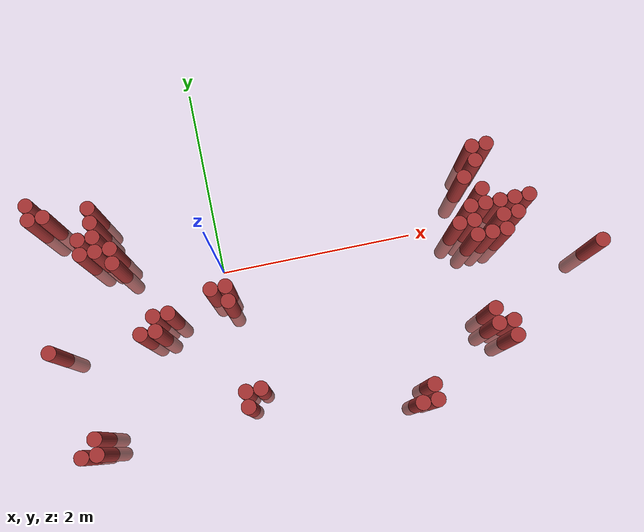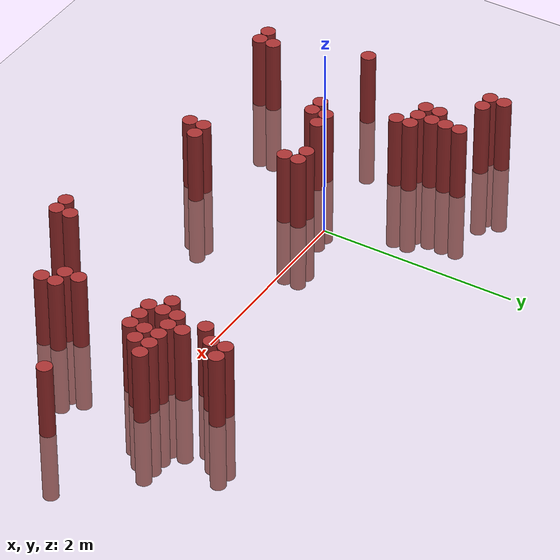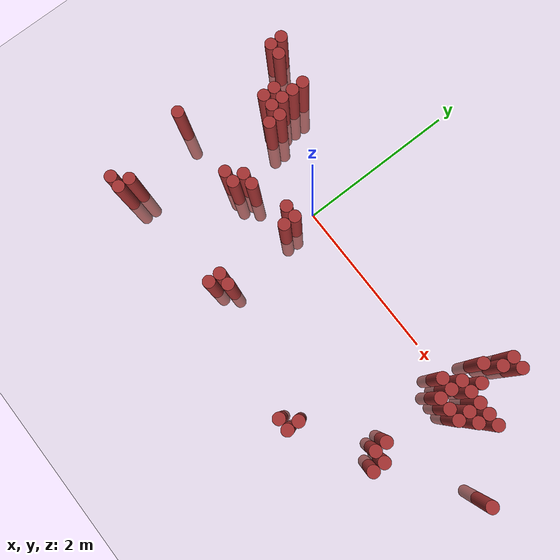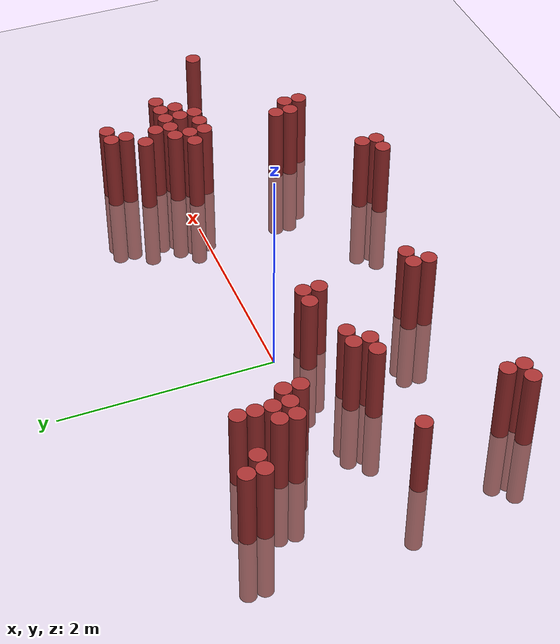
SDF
<sdf version="1.6">
 <world name="default">
  <model name="ground_plane">
   <static>1</static>
   <link name="link">
    <collision name="collision">
     <geometry><plane><normal>0 0 1</normal><size>100 100</size></plane></geometry>
     <surface><friction><ode><mu>100</mu><mu2>50</mu2></ode></friction></surface>
    </collision>
    <visual name="visual">
     <cast_shadows>0</cast_shadows>
     <geometry><plane><normal>0 0 1</normal><size>100 100</size></plane></geometry>
     <material>
      <script><uri>file://media/materials/scripts/gazebo.material</uri><name>Gazebo/Grey</name></script>
     </material>
    </visual>
   </link>
  </model>
  <model name="unit_cylinder_316">
   <static>1</static>
   <pose>-1.775000 -0.575000 0.000000 0.000000 0.000000 0.000000</pose>
   <link name="link">
    <inertial>
     <mass>1</mass>
     <inertia><ixx>0.145833</ixx><ixy>0</ixy><ixz>0</ixz><iyy>0.145833</iyy><iyz>0</iyz><izz>0.125</izz></inertia>
    </inertial>
    <collision name="collision">
     <geometry><cylinder><radius>0.075000</radius><length>1.5</length></cylinder></geometry>
    </collision>
    <visual name="visual">
     <geometry><cylinder><radius>0.075000</radius><length>1.5</length></cylinder></geometry>
     <material>
      <ambient>0.648000 0.192000 0.192000 1</ambient>
      <diffuse>0.648000 0.192000 0.192000 1</diffuse>
     </material>
     <material>
      <script><name>Gazebo/Grey</name><uri>file://media/materials/scripts/gazebo.material</uri></script>
     </material>
    </visual>
   </link>
  </model>
  <model name="unit_cylinder_317">
   <static>1</static>
   <pose>-1.775000 0.775000 0.000000 0.000000 0.000000 0.000000</pose>
   <link name="link">
    <inertial>
     <mass>1</mass>
     <inertia><ixx>0.145833</ixx><ixy>0</ixy><ixz>0</ixz><iyy>0.145833</iyy><iyz>0</iyz><izz>0.125</izz></inertia>
    </inertial>
    <collision name="collision">
     <geometry><cylinder><radius>0.075000</radius><length>1.5</length></cylinder></geometry>
    </collision>
    <visual name="visual">
     <geometry><cylinder><radius>0.075000</radius><length>1.5</length></cylinder></geometry>
     <material>
      <ambient>0.648000 0.192000 0.192000 1</ambient>
      <diffuse>0.648000 0.192000 0.192000 1</diffuse>
     </material>
     <material>
      <script><name>Gazebo/Grey</name><uri>file://media/materials/scripts/gazebo.material</uri></script>
     </material>
    </visual>
   </link>
  </model>
  <model name="unit_cylinder_318">
   <static>1</static>
   <pose>-1.775000 0.925000 0.000000 0.000000 0.000000 0.000000</pose>
   <link name="link">
    <inertial>
     <mass>1</mass>
     <inertia><ixx>0.145833</ixx><ixy>0</ixy><ixz>0</ixz><iyy>0.145833</iyy><iyz>0</iyz><izz>0.125</izz></inertia>
    </inertial>
    <collision name="collision">
     <geometry><cylinder><radius>0.075000</radius><length>1.5</length></cylinder></geometry>
    </collision>
    <visual name="visual">
     <geometry><cylinder><radius>0.075000</radius><length>1.5</length></cylinder></geometry>
     <material>
      <ambient>0.648000 0.192000 0.192000 1</ambient>
      <diffuse>0.648000 0.192000 0.192000 1</diffuse>
     </material>
     <material>
      <script><name>Gazebo/Grey</name><uri>file://media/materials/scripts/gazebo.material</uri></script>
     </material>
    </visual>
   </link>
  </model>
  <model name="unit_cylinder_319">
   <static>1</static>
   <pose>-1.625000 -1.625000 0.000000 0.000000 0.000000 0.000000</pose>
   <link name="link">
    <inertial>
     <mass>1</mass>
     <inertia><ixx>0.145833</ixx><ixy>0</ixy><ixz>0</ixz><iyy>0.145833</iyy><iyz>0</iyz><izz>0.125</izz></inertia>
    </inertial>
    <collision name="collision">
     <geometry><cylinder><radius>0.075000</radius><length>1.5</length></cylinder></geometry>
    </collision>
    <visual name="visual">
     <geometry><cylinder><radius>0.075000</radius><length>1.5</length></cylinder></geometry>
     <material>
      <ambient>0.648000 0.192000 0.192000 1</ambient>
      <diffuse>0.648000 0.192000 0.192000 1</diffuse>
     </material>
     <material>
      <script><name>Gazebo/Grey</name><uri>file://media/materials/scripts/gazebo.material</uri></script>
     </material>
    </visual>
   </link>
  </model>
  <model name="unit_cylinder_320">
   <static>1</static>
   <pose>-1.625000 0.775000 0.000000 0.000000 0.000000 0.000000</pose>
   <link name="link">
    <inertial>
     <mass>1</mass>
     <inertia><ixx>0.145833</ixx><ixy>0</ixy><ixz>0</ixz><iyy>0.145833</iyy><iyz>0</iyz><izz>0.125</izz></inertia>
    </inertial>
    <collision name="collision">
     <geometry><cylinder><radius>0.075000</radius><length>1.5</length></cylinder></geometry>
    </collision>
    <visual name="visual">
     <geometry><cylinder><radius>0.075000</radius><length>1.5</length></cylinder></geometry>
     <material>
      <ambient>0.648000 0.192000 0.192000 1</ambient>
      <diffuse>0.648000 0.192000 0.192000 1</diffuse>
     </material>
     <material>
      <script><name>Gazebo/Grey</name><uri>file://media/materials/scripts/gazebo.material</uri></script>
     </material>
    </visual>
   </link>
  </model>
  <model name="unit_cylinder_323">
   <static>1</static>
   <pose>-1.475000 -1.625000 0.000000 0.000000 0.000000 0.000000</pose>
   <link name="link">
    <inertial>
     <mass>1</mass>
     <inertia><ixx>0.145833</ixx><ixy>0</ixy><ixz>0</ixz><iyy>0.145833</iyy><iyz>0</iyz><izz>0.125</izz></inertia>
    </inertial>
    <collision name="collision">
     <geometry><cylinder><radius>0.075000</radius><length>1.5</length></cylinder></geometry>
    </collision>
    <visual name="visual">
     <geometry><cylinder><radius>0.075000</radius><length>1.5</length></cylinder></geometry>
     <material>
      <ambient>0.648000 0.192000 0.192000 1</ambient>
      <diffuse>0.648000 0.192000 0.192000 1</diffuse>
     </material>
     <material>
      <script><name>Gazebo/Grey</name><uri>file://media/materials/scripts/gazebo.material</uri></script>
     </material>
    </visual>
   </link>
  </model>
  <model name="unit_cylinder_324">
   <static>1</static>
   <pose>-1.475000 -1.475000 0.000000 0.000000 0.000000 0.000000</pose>
   <link name="link">
    <inertial>
     <mass>1</mass>
     <inertia><ixx>0.145833</ixx><ixy>0</ixy><ixz>0</ixz><iyy>0.145833</iyy><iyz>0</iyz><izz>0.125</izz></inertia>
    </inertial>
    <collision name="collision">
     <geometry><cylinder><radius>0.075000</radius><length>1.5</length></cylinder></geometry>
    </collision>
    <visual name="visual">
     <geometry><cylinder><radius>0.075000</radius><length>1.5</length></cylinder></geometry>
     <material>
      <ambient>0.648000 0.192000 0.192000 1</ambient>
      <diffuse>0.648000 0.192000 0.192000 1</diffuse>
     </material>
     <material>
      <script><name>Gazebo/Grey</name><uri>file://media/materials/scripts/gazebo.material</uri></script>
     </material>
    </visual>
   </link>
  </model>
  <model name="unit_cylinder_330">
   <static>1</static>
   <pose>-1.325000 0.325000 0.000000 0.000000 0.000000 0.000000</pose>
   <link name="link">
    <inertial>
     <mass>1</mass>
     <inertia><ixx>0.145833</ixx><ixy>0</ixy><ixz>0</ixz><iyy>0.145833</iyy><iyz>0</iyz><izz>0.125</izz></inertia>
    </inertial>
    <collision name="collision">
     <geometry><cylinder><radius>0.075000</radius><length>1.5</length></cylinder></geometry>
    </collision>
    <visual name="visual">
     <geometry><cylinder><radius>0.075000</radius><length>1.5</length></cylinder></geometry>
     <material>
      <ambient>0.648000 0.192000 0.192000 1</ambient>
      <diffuse>0.648000 0.192000 0.192000 1</diffuse>
     </material>
     <material>
      <script><name>Gazebo/Grey</name><uri>file://media/materials/scripts/gazebo.material</uri></script>
     </material>
    </visual>
   </link>
  </model>
  <model name="unit_cylinder_331">
   <static>1</static>
   <pose>-1.325000 0.475000 0.000000 0.000000 0.000000 0.000000</pose>
   <link name="link">
    <inertial>
     <mass>1</mass>
     <inertia><ixx>0.145833</ixx><ixy>0</ixy><ixz>0</ixz><iyy>0.145833</iyy><iyz>0</iyz><izz>0.125</izz></inertia>
    </inertial>
    <collision name="collision">
     <geometry><cylinder><radius>0.075000</radius><length>1.5</length></cylinder></geometry>
    </collision>
    <visual name="visual">
     <geometry><cylinder><radius>0.075000</radius><length>1.5</length></cylinder></geometry>
     <material>
      <ambient>0.648000 0.192000 0.192000 1</ambient>
      <diffuse>0.648000 0.192000 0.192000 1</diffuse>
     </material>
     <material>
      <script><name>Gazebo/Grey</name><uri>file://media/materials/scripts/gazebo.material</uri></script>
     </material>
    </visual>
   </link>
  </model>
  <model name="unit_cylinder_339">
   <static>1</static>
   <pose>-1.175000 0.325000 0.000000 0.000000 0.000000 0.000000</pose>
   <link name="link">
    <inertial>
     <mass>1</mass>
     <inertia><ixx>0.145833</ixx><ixy>0</ixy><ixz>0</ixz><iyy>0.145833</iyy><iyz>0</iyz><izz>0.125</izz></inertia>
    </inertial>
    <collision name="collision">
     <geometry><cylinder><radius>0.075000</radius><length>1.5</length></cylinder></geometry>
    </collision>
    <visual name="visual">
     <geometry><cylinder><radius>0.075000</radius><length>1.5</length></cylinder></geometry>
     <material>
      <ambient>0.648000 0.192000 0.192000 1</ambient>
      <diffuse>0.648000 0.192000 0.192000 1</diffuse>
     </material>
     <material>
      <script><name>Gazebo/Grey</name><uri>file://media/materials/scripts/gazebo.material</uri></script>
     </material>
    </visual>
   </link>
  </model>
  <model name="unit_cylinder_340">
   <static>1</static>
   <pose>-1.175000 0.475000 0.000000 0.000000 0.000000 0.000000</pose>
   <link name="link">
    <inertial>
     <mass>1</mass>
     <inertia><ixx>0.145833</ixx><ixy>0</ixy><ixz>0</ixz><iyy>0.145833</iyy><iyz>0</iyz><izz>0.125</izz></inertia>
    </inertial>
    <collision name="collision">
     <geometry><cylinder><radius>0.075000</radius><length>1.5</length></cylinder></geometry>
    </collision>
    <visual name="visual">
     <geometry><cylinder><radius>0.075000</radius><length>1.5</length></cylinder></geometry>
     <material>
      <ambient>0.648000 0.192000 0.192000 1</ambient>
      <diffuse>0.648000 0.192000 0.192000 1</diffuse>
     </material>
     <material>
      <script><name>Gazebo/Grey</name><uri>file://media/materials/scripts/gazebo.material</uri></script>
     </material>
    </visual>
   </link>
  </model>
  <model name="unit_cylinder_341">
   <static>1</static>
   <pose>-1.175000 0.625000 0.000000 0.000000 0.000000 0.000000</pose>
   <link name="link">
    <inertial>
     <mass>1</mass>
     <inertia><ixx>0.145833</ixx><ixy>0</ixy><ixz>0</ixz><iyy>0.145833</iyy><iyz>0</iyz><izz>0.125</izz></inertia>
    </inertial>
    <collision name="collision">
     <geometry><cylinder><radius>0.075000</radius><length>1.5</length></cylinder></geometry>
    </collision>
    <visual name="visual">
     <geometry><cylinder><radius>0.075000</radius><length>1.5</length></cylinder></geometry>
     <material>
      <ambient>0.648000 0.192000 0.192000 1</ambient>
      <diffuse>0.648000 0.192000 0.192000 1</diffuse>
     </material>
     <material>
      <script><name>Gazebo/Grey</name><uri>file://media/materials/scripts/gazebo.material</uri></script>
     </material>
    </visual>
   </link>
  </model>
  <model name="unit_cylinder_342">
   <static>1</static>
   <pose>-1.175000 0.775000 0.000000 0.000000 0.000000 0.000000</pose>
   <link name="link">
    <inertial>
     <mass>1</mass>
     <inertia><ixx>0.145833</ixx><ixy>0</ixy><ixz>0</ixz><iyy>0.145833</iyy><iyz>0</iyz><izz>0.125</izz></inertia>
    </inertial>
    <collision name="collision">
     <geometry><cylinder><radius>0.075000</radius><length>1.5</length></cylinder></geometry>
    </collision>
    <visual name="visual">
     <geometry><cylinder><radius>0.075000</radius><length>1.5</length></cylinder></geometry>
     <material>
      <ambient>0.648000 0.192000 0.192000 1</ambient>
      <diffuse>0.648000 0.192000 0.192000 1</diffuse>
     </material>
     <material>
      <script><name>Gazebo/Grey</name><uri>file://media/materials/scripts/gazebo.material</uri></script>
     </material>
    </visual>
   </link>
  </model>
  <model name="unit_cylinder_349">
   <static>1</static>
   <pose>-1.025000 0.175000 0.000000 0.000000 0.000000 0.000000</pose>
   <link name="link">
    <inertial>
     <mass>1</mass>
     <inertia><ixx>0.145833</ixx><ixy>0</ixy><ixz>0</ixz><iyy>0.145833</iyy><iyz>0</iyz><izz>0.125</izz></inertia>
    </inertial>
    <collision name="collision">
     <geometry><cylinder><radius>0.075000</radius><length>1.5</length></cylinder></geometry>
    </collision>
    <visual name="visual">
     <geometry><cylinder><radius>0.075000</radius><length>1.5</length></cylinder></geometry>
     <material>
      <ambient>0.648000 0.192000 0.192000 1</ambient>
      <diffuse>0.648000 0.192000 0.192000 1</diffuse>
     </material>
     <material>
      <script><name>Gazebo/Grey</name><uri>file://media/materials/scripts/gazebo.material</uri></script>
     </material>
    </visual>
   </link>
  </model>
  <model name="unit_cylinder_350">
   <static>1</static>
   <pose>-1.025000 0.325000 0.000000 0.000000 0.000000 0.000000</pose>
   <link name="link">
    <inertial>
     <mass>1</mass>
     <inertia><ixx>0.145833</ixx><ixy>0</ixy><ixz>0</ixz><iyy>0.145833</iyy><iyz>0</iyz><izz>0.125</izz></inertia>
    </inertial>
    <collision name="collision">
     <geometry><cylinder><radius>0.075000</radius><length>1.5</length></cylinder></geometry>
    </collision>
    <visual name="visual">
     <geometry><cylinder><radius>0.075000</radius><length>1.5</length></cylinder></geometry>
     <material>
      <ambient>0.648000 0.192000 0.192000 1</ambient>
      <diffuse>0.648000 0.192000 0.192000 1</diffuse>
     </material>
     <material>
      <script><name>Gazebo/Grey</name><uri>file://media/materials/scripts/gazebo.material</uri></script>
     </material>
    </visual>
   </link>
  </model>
  <model name="unit_cylinder_358">
   <static>1</static>
   <pose>-0.875000 -0.575000 0.000000 0.000000 0.000000 0.000000</pose>
   <link name="link">
    <inertial>
     <mass>1</mass>
     <inertia><ixx>0.145833</ixx><ixy>0</ixy><ixz>0</ixz><iyy>0.145833</iyy><iyz>0</iyz><izz>0.125</izz></inertia>
    </inertial>
    <collision name="collision">
     <geometry><cylinder><radius>0.075000</radius><length>1.5</length></cylinder></geometry>
    </collision>
    <visual name="visual">
     <geometry><cylinder><radius>0.075000</radius><length>1.5</length></cylinder></geometry>
     <material>
      <ambient>0.648000 0.192000 0.192000 1</ambient>
      <diffuse>0.648000 0.192000 0.192000 1</diffuse>
     </material>
     <material>
      <script><name>Gazebo/Grey</name><uri>file://media/materials/scripts/gazebo.material</uri></script>
     </material>
    </visual>
   </link>
  </model>
  <model name="unit_cylinder_362">
   <static>1</static>
   <pose>-0.725000 -0.575000 0.000000 0.000000 0.000000 0.000000</pose>
   <link name="link">
    <inertial>
     <mass>1</mass>
     <inertia><ixx>0.145833</ixx><ixy>0</ixy><ixz>0</ixz><iyy>0.145833</iyy><iyz>0</iyz><izz>0.125</izz></inertia>
    </inertial>
    <collision name="collision">
     <geometry><cylinder><radius>0.075000</radius><length>1.5</length></cylinder></geometry>
    </collision>
    <visual name="visual">
     <geometry><cylinder><radius>0.075000</radius><length>1.5</length></cylinder></geometry>
     <material>
      <ambient>0.648000 0.192000 0.192000 1</ambient>
      <diffuse>0.648000 0.192000 0.192000 1</diffuse>
     </material>
     <material>
      <script><name>Gazebo/Grey</name><uri>file://media/materials/scripts/gazebo.material</uri></script>
     </material>
    </visual>
   </link>
  </model>
  <model name="unit_cylinder_363">
   <static>1</static>
   <pose>-0.725000 -0.425000 0.000000 0.000000 0.000000 0.000000</pose>
   <link name="link">
    <inertial>
     <mass>1</mass>
     <inertia><ixx>0.145833</ixx><ixy>0</ixy><ixz>0</ixz><iyy>0.145833</iyy><iyz>0</iyz><izz>0.125</izz></inertia>
    </inertial>
    <collision name="collision">
     <geometry><cylinder><radius>0.075000</radius><length>1.5</length></cylinder></geometry>
    </collision>
    <visual name="visual">
     <geometry><cylinder><radius>0.075000</radius><length>1.5</length></cylinder></geometry>
     <material>
      <ambient>0.648000 0.192000 0.192000 1</ambient>
      <diffuse>0.648000 0.192000 0.192000 1</diffuse>
     </material>
     <material>
      <script><name>Gazebo/Grey</name><uri>file://media/materials/scripts/gazebo.material</uri></script>
     </material>
    </visual>
   </link>
  </model>
  <model name="unit_cylinder_368">
   <static>1</static>
   <pose>-0.575000 -0.425000 0.000000 0.000000 0.000000 0.000000</pose>
   <link name="link">
    <inertial>
     <mass>1</mass>
     <inertia><ixx>0.145833</ixx><ixy>0</ixy><ixz>0</ixz><iyy>0.145833</iyy><iyz>0</iyz><izz>0.125</izz></inertia>
    </inertial>
    <collision name="collision">
     <geometry><cylinder><radius>0.075000</radius><length>1.5</length></cylinder></geometry>
    </collision>
    <visual name="visual">
     <geometry><cylinder><radius>0.075000</radius><length>1.5</length></cylinder></geometry>
     <material>
      <ambient>0.648000 0.192000 0.192000 1</ambient>
      <diffuse>0.648000 0.192000 0.192000 1</diffuse>
     </material>
     <material>
      <script><name>Gazebo/Grey</name><uri>file://media/materials/scripts/gazebo.material</uri></script>
     </material>
    </visual>
   </link>
  </model>
  <model name="unit_cylinder_382">
   <static>1</static>
   <pose>-0.125000 -0.275000 0.000000 0.000000 0.000000 0.000000</pose>
   <link name="link">
    <inertial>
     <mass>1</mass>
     <inertia><ixx>0.145833</ixx><ixy>0</ixy><ixz>0</ixz><iyy>0.145833</iyy><iyz>0</iyz><izz>0.125</izz></inertia>
    </inertial>
    <collision name="collision">
     <geometry><cylinder><radius>0.075000</radius><length>1.5</length></cylinder></geometry>
    </collision>
    <visual name="visual">
     <geometry><cylinder><radius>0.075000</radius><length>1.5</length></cylinder></geometry>
     <material>
      <ambient>0.648000 0.192000 0.192000 1</ambient>
      <diffuse>0.648000 0.192000 0.192000 1</diffuse>
     </material>
     <material>
      <script><name>Gazebo/Grey</name><uri>file://media/materials/scripts/gazebo.material</uri></script>
     </material>
    </visual>
   </link>
  </model>
  <model name="unit_cylinder_383">
   <static>1</static>
   <pose>0.025000 -1.475000 0.000000 0.000000 0.000000 0.000000</pose>
   <link name="link">
    <inertial>
     <mass>1</mass>
     <inertia><ixx>0.145833</ixx><ixy>0</ixy><ixz>0</ixz><iyy>0.145833</iyy><iyz>0</iyz><izz>0.125</izz></inertia>
    </inertial>
    <collision name="collision">
     <geometry><cylinder><radius>0.075000</radius><length>1.5</length></cylinder></geometry>
    </collision>
    <visual name="visual">
     <geometry><cylinder><radius>0.075000</radius><length>1.5</length></cylinder></geometry>
     <material>
      <ambient>0.648000 0.192000 0.192000 1</ambient>
      <diffuse>0.648000 0.192000 0.192000 1</diffuse>
     </material>
     <material>
      <script><name>Gazebo/Grey</name><uri>file://media/materials/scripts/gazebo.material</uri></script>
     </material>
    </visual>
   </link>
  </model>
  <model name="unit_cylinder_384">
   <static>1</static>
   <pose>0.025000 -1.325000 0.000000 0.000000 0.000000 0.000000</pose>
   <link name="link">
    <inertial>
     <mass>1</mass>
     <inertia><ixx>0.145833</ixx><ixy>0</ixy><ixz>0</ixz><iyy>0.145833</iyy><iyz>0</iyz><izz>0.125</izz></inertia>
    </inertial>
    <collision name="collision">
     <geometry><cylinder><radius>0.075000</radius><length>1.5</length></cylinder></geometry>
    </collision>
    <visual name="visual">
     <geometry><cylinder><radius>0.075000</radius><length>1.5</length></cylinder></geometry>
     <material>
      <ambient>0.648000 0.192000 0.192000 1</ambient>
      <diffuse>0.648000 0.192000 0.192000 1</diffuse>
     </material>
     <material>
      <script><name>Gazebo/Grey</name><uri>file://media/materials/scripts/gazebo.material</uri></script>
     </material>
    </visual>
   </link>
  </model>
  <model name="unit_cylinder_385">
   <static>1</static>
   <pose>0.025000 -0.425000 0.000000 0.000000 0.000000 0.000000</pose>
   <link name="link">
    <inertial>
     <mass>1</mass>
     <inertia><ixx>0.145833</ixx><ixy>0</ixy><ixz>0</ixz><iyy>0.145833</iyy><iyz>0</iyz><izz>0.125</izz></inertia>
    </inertial>
    <collision name="collision">
     <geometry><cylinder><radius>0.075000</radius><length>1.5</length></cylinder></geometry>
    </collision>
    <visual name="visual">
     <geometry><cylinder><radius>0.075000</radius><length>1.5</length></cylinder></geometry>
     <material>
      <ambient>0.648000 0.192000 0.192000 1</ambient>
      <diffuse>0.648000 0.192000 0.192000 1</diffuse>
     </material>
     <material>
      <script><name>Gazebo/Grey</name><uri>file://media/materials/scripts/gazebo.material</uri></script>
     </material>
    </visual>
   </link>
  </model>
  <model name="unit_cylinder_386">
   <static>1</static>
   <pose>0.025000 -0.275000 0.000000 0.000000 0.000000 0.000000</pose>
   <link name="link">
    <inertial>
     <mass>1</mass>
     <inertia><ixx>0.145833</ixx><ixy>0</ixy><ixz>0</ixz><iyy>0.145833</iyy><iyz>0</iyz><izz>0.125</izz></inertia>
    </inertial>
    <collision name="collision">
     <geometry><cylinder><radius>0.075000</radius><length>1.5</length></cylinder></geometry>
    </collision>
    <visual name="visual">
     <geometry><cylinder><radius>0.075000</radius><length>1.5</length></cylinder></geometry>
     <material>
      <ambient>0.648000 0.192000 0.192000 1</ambient>
      <diffuse>0.648000 0.192000 0.192000 1</diffuse>
     </material>
     <material>
      <script><name>Gazebo/Grey</name><uri>file://media/materials/scripts/gazebo.material</uri></script>
     </material>
    </visual>
   </link>
  </model>
  <model name="unit_cylinder_387">
   <static>1</static>
   <pose>0.175000 -1.325000 0.000000 0.000000 0.000000 0.000000</pose>
   <link name="link">
    <inertial>
     <mass>1</mass>
     <inertia><ixx>0.145833</ixx><ixy>0</ixy><ixz>0</ixz><iyy>0.145833</iyy><iyz>0</iyz><izz>0.125</izz></inertia>
    </inertial>
    <collision name="collision">
     <geometry><cylinder><radius>0.075000</radius><length>1.5</length></cylinder></geometry>
    </collision>
    <visual name="visual">
     <geometry><cylinder><radius>0.075000</radius><length>1.5</length></cylinder></geometry>
     <material>
      <ambient>0.648000 0.192000 0.192000 1</ambient>
      <diffuse>0.648000 0.192000 0.192000 1</diffuse>
     </material>
     <material>
      <script><name>Gazebo/Grey</name><uri>file://media/materials/scripts/gazebo.material</uri></script>
     </material>
    </visual>
   </link>
  </model>
  <model name="unit_cylinder_425">
   <static>1</static>
   <pose>1.675000 -1.775000 0.000000 0.000000 0.000000 0.000000</pose>
   <link name="link">
    <inertial>
     <mass>1</mass>
     <inertia><ixx>0.145833</ixx><ixy>0</ixy><ixz>0</ixz><iyy>0.145833</iyy><iyz>0</iyz><izz>0.125</izz></inertia>
    </inertial>
    <collision name="collision">
     <geometry><cylinder><radius>0.075000</radius><length>1.5</length></cylinder></geometry>
    </collision>
    <visual name="visual">
     <geometry><cylinder><radius>0.075000</radius><length>1.5</length></cylinder></geometry>
     <material>
      <ambient>0.648000 0.192000 0.192000 1</ambient>
      <diffuse>0.648000 0.192000 0.192000 1</diffuse>
     </material>
     <material>
      <script><name>Gazebo/Grey</name><uri>file://media/materials/scripts/gazebo.material</uri></script>
     </material>
    </visual>
   </link>
  </model>
  <model name="unit_cylinder_427">
   <static>1</static>
   <pose>1.825000 -1.775000 0.000000 0.000000 0.000000 0.000000</pose>
   <link name="link">
    <inertial>
     <mass>1</mass>
     <inertia><ixx>0.145833</ixx><ixy>0</ixy><ixz>0</ixz><iyy>0.145833</iyy><iyz>0</iyz><izz>0.125</izz></inertia>
    </inertial>
    <collision name="collision">
     <geometry><cylinder><radius>0.075000</radius><length>1.5</length></cylinder></geometry>
    </collision>
    <visual name="visual">
     <geometry><cylinder><radius>0.075000</radius><length>1.5</length></cylinder></geometry>
     <material>
      <ambient>0.648000 0.192000 0.192000 1</ambient>
      <diffuse>0.648000 0.192000 0.192000 1</diffuse>
     </material>
     <material>
      <script><name>Gazebo/Grey</name><uri>file://media/materials/scripts/gazebo.material</uri></script>
     </material>
    </visual>
   </link>
  </model>
  <model name="unit_cylinder_428">
   <static>1</static>
   <pose>1.825000 -1.625000 0.000000 0.000000 0.000000 0.000000</pose>
   <link name="link">
    <inertial>
     <mass>1</mass>
     <inertia><ixx>0.145833</ixx><ixy>0</ixy><ixz>0</ixz><iyy>0.145833</iyy><iyz>0</iyz><izz>0.125</izz></inertia>
    </inertial>
    <collision name="collision">
     <geometry><cylinder><radius>0.075000</radius><length>1.5</length></cylinder></geometry>
    </collision>
    <visual name="visual">
     <geometry><cylinder><radius>0.075000</radius><length>1.5</length></cylinder></geometry>
     <material>
      <ambient>0.648000 0.192000 0.192000 1</ambient>
      <diffuse>0.648000 0.192000 0.192000 1</diffuse>
     </material>
     <material>
      <script><name>Gazebo/Grey</name><uri>file://media/materials/scripts/gazebo.material</uri></script>
     </material>
    </visual>
   </link>
  </model>
  <model name="unit_cylinder_444">
   <static>1</static>
   <pose>2.425000 -0.125000 0.000000 0.000000 0.000000 0.000000</pose>
   <link name="link">
    <inertial>
     <mass>1</mass>
     <inertia><ixx>0.145833</ixx><ixy>0</ixy><ixz>0</ixz><iyy>0.145833</iyy><iyz>0</iyz><izz>0.125</izz></inertia>
    </inertial>
    <collision name="collision">
     <geometry><cylinder><radius>0.075000</radius><length>1.5</length></cylinder></geometry>
    </collision>
    <visual name="visual">
     <geometry><cylinder><radius>0.075000</radius><length>1.5</length></cylinder></geometry>
     <material>
      <ambient>0.648000 0.192000 0.192000 1</ambient>
      <diffuse>0.648000 0.192000 0.192000 1</diffuse>
     </material>
     <material>
      <script><name>Gazebo/Grey</name><uri>file://media/materials/scripts/gazebo.material</uri></script>
     </material>
    </visual>
   </link>
  </model>
  <model name="unit_cylinder_447">
   <static>1</static>
   <pose>2.575000 -1.175000 0.000000 0.000000 0.000000 0.000000</pose>
   <link name="link">
    <inertial>
     <mass>1</mass>
     <inertia><ixx>0.145833</ixx><ixy>0</ixy><ixz>0</ixz><iyy>0.145833</iyy><iyz>0</iyz><izz>0.125</izz></inertia>
    </inertial>
    <collision name="collision">
     <geometry><cylinder><radius>0.075000</radius><length>1.5</length></cylinder></geometry>
    </collision>
    <visual name="visual">
     <geometry><cylinder><radius>0.075000</radius><length>1.5</length></cylinder></geometry>
     <material>
      <ambient>0.648000 0.192000 0.192000 1</ambient>
      <diffuse>0.648000 0.192000 0.192000 1</diffuse>
     </material>
     <material>
      <script><name>Gazebo/Grey</name><uri>file://media/materials/scripts/gazebo.material</uri></script>
     </material>
    </visual>
   </link>
  </model>
  <model name="unit_cylinder_448">
   <static>1</static>
   <pose>2.575000 -1.025000 0.000000 0.000000 0.000000 0.000000</pose>
   <link name="link">
    <inertial>
     <mass>1</mass>
     <inertia><ixx>0.145833</ixx><ixy>0</ixy><ixz>0</ixz><iyy>0.145833</iyy><iyz>0</iyz><izz>0.125</izz></inertia>
    </inertial>
    <collision name="collision">
     <geometry><cylinder><radius>0.075000</radius><length>1.5</length></cylinder></geometry>
    </collision>
    <visual name="visual">
     <geometry><cylinder><radius>0.075000</radius><length>1.5</length></cylinder></geometry>
     <material>
      <ambient>0.648000 0.192000 0.192000 1</ambient>
      <diffuse>0.648000 0.192000 0.192000 1</diffuse>
     </material>
     <material>
      <script><name>Gazebo/Grey</name><uri>file://media/materials/scripts/gazebo.material</uri></script>
     </material>
    </visual>
   </link>
  </model>
  <model name="unit_cylinder_449">
   <static>1</static>
   <pose>2.575000 -0.275000 0.000000 0.000000 0.000000 0.000000</pose>
   <link name="link">
    <inertial>
     <mass>1</mass>
     <inertia><ixx>0.145833</ixx><ixy>0</ixy><ixz>0</ixz><iyy>0.145833</iyy><iyz>0</iyz><izz>0.125</izz></inertia>
    </inertial>
    <collision name="collision">
     <geometry><cylinder><radius>0.075000</radius><length>1.5</length></cylinder></geometry>
    </collision>
    <visual name="visual">
     <geometry><cylinder><radius>0.075000</radius><length>1.5</length></cylinder></geometry>
     <material>
      <ambient>0.648000 0.192000 0.192000 1</ambient>
      <diffuse>0.648000 0.192000 0.192000 1</diffuse>
     </material>
     <material>
      <script><name>Gazebo/Grey</name><uri>file://media/materials/scripts/gazebo.material</uri></script>
     </material>
    </visual>
   </link>
  </model>
  <model name="unit_cylinder_450">
   <static>1</static>
   <pose>2.575000 -0.125000 0.000000 0.000000 0.000000 0.000000</pose>
   <link name="link">
    <inertial>
     <mass>1</mass>
     <inertia><ixx>0.145833</ixx><ixy>0</ixy><ixz>0</ixz><iyy>0.145833</iyy><iyz>0</iyz><izz>0.125</izz></inertia>
    </inertial>
    <collision name="collision">
     <geometry><cylinder><radius>0.075000</radius><length>1.5</length></cylinder></geometry>
    </collision>
    <visual name="visual">
     <geometry><cylinder><radius>0.075000</radius><length>1.5</length></cylinder></geometry>
     <material>
      <ambient>0.648000 0.192000 0.192000 1</ambient>
      <diffuse>0.648000 0.192000 0.192000 1</diffuse>
     </material>
     <material>
      <script><name>Gazebo/Grey</name><uri>file://media/materials/scripts/gazebo.material</uri></script>
     </material>
    </visual>
   </link>
  </model>
  <model name="unit_cylinder_451">
   <static>1</static>
   <pose>2.575000 0.025000 0.000000 0.000000 0.000000 0.000000</pose>
   <link name="link">
    <inertial>
     <mass>1</mass>
     <inertia><ixx>0.145833</ixx><ixy>0</ixy><ixz>0</ixz><iyy>0.145833</iyy><iyz>0</iyz><izz>0.125</izz></inertia>
    </inertial>
    <collision name="collision">
     <geometry><cylinder><radius>0.075000</radius><length>1.5</length></cylinder></geometry>
    </collision>
    <visual name="visual">
     <geometry><cylinder><radius>0.075000</radius><length>1.5</length></cylinder></geometry>
     <material>
      <ambient>0.648000 0.192000 0.192000 1</ambient>
      <diffuse>0.648000 0.192000 0.192000 1</diffuse>
     </material>
     <material>
      <script><name>Gazebo/Grey</name><uri>file://media/materials/scripts/gazebo.material</uri></script>
     </material>
    </visual>
   </link>
  </model>
  <model name="unit_cylinder_452">
   <static>1</static>
   <pose>2.575000 0.325000 0.000000 0.000000 0.000000 0.000000</pose>
   <link name="link">
    <inertial>
     <mass>1</mass>
     <inertia><ixx>0.145833</ixx><ixy>0</ixy><ixz>0</ixz><iyy>0.145833</iyy><iyz>0</iyz><izz>0.125</izz></inertia>
    </inertial>
    <collision name="collision">
     <geometry><cylinder><radius>0.075000</radius><length>1.5</length></cylinder></geometry>
    </collision>
    <visual name="visual">
     <geometry><cylinder><radius>0.075000</radius><length>1.5</length></cylinder></geometry>
     <material>
      <ambient>0.648000 0.192000 0.192000 1</ambient>
      <diffuse>0.648000 0.192000 0.192000 1</diffuse>
     </material>
     <material>
      <script><name>Gazebo/Grey</name><uri>file://media/materials/scripts/gazebo.material</uri></script>
     </material>
    </visual>
   </link>
  </model>
  <model name="unit_cylinder_457">
   <static>1</static>
   <pose>2.725000 -1.325000 0.000000 0.000000 0.000000 0.000000</pose>
   <link name="link">
    <inertial>
     <mass>1</mass>
     <inertia><ixx>0.145833</ixx><ixy>0</ixy><ixz>0</ixz><iyy>0.145833</iyy><iyz>0</iyz><izz>0.125</izz></inertia>
    </inertial>
    <collision name="collision">
     <geometry><cylinder><radius>0.075000</radius><length>1.5</length></cylinder></geometry>
    </collision>
    <visual name="visual">
     <geometry><cylinder><radius>0.075000</radius><length>1.5</length></cylinder></geometry>
     <material>
      <ambient>0.648000 0.192000 0.192000 1</ambient>
      <diffuse>0.648000 0.192000 0.192000 1</diffuse>
     </material>
     <material>
      <script><name>Gazebo/Grey</name><uri>file://media/materials/scripts/gazebo.material</uri></script>
     </material>
    </visual>
   </link>
  </model>
  <model name="unit_cylinder_458">
   <static>1</static>
   <pose>2.725000 -1.175000 0.000000 0.000000 0.000000 0.000000</pose>
   <link name="link">
    <inertial>
     <mass>1</mass>
     <inertia><ixx>0.145833</ixx><ixy>0</ixy><ixz>0</ixz><iyy>0.145833</iyy><iyz>0</iyz><izz>0.125</izz></inertia>
    </inertial>
    <collision name="collision">
     <geometry><cylinder><radius>0.075000</radius><length>1.5</length></cylinder></geometry>
    </collision>
    <visual name="visual">
     <geometry><cylinder><radius>0.075000</radius><length>1.5</length></cylinder></geometry>
     <material>
      <ambient>0.648000 0.192000 0.192000 1</ambient>
      <diffuse>0.648000 0.192000 0.192000 1</diffuse>
     </material>
     <material>
      <script><name>Gazebo/Grey</name><uri>file://media/materials/scripts/gazebo.material</uri></script>
     </material>
    </visual>
   </link>
  </model>
  <model name="unit_cylinder_459">
   <static>1</static>
   <pose>2.725000 -0.275000 0.000000 0.000000 0.000000 0.000000</pose>
   <link name="link">
    <inertial>
     <mass>1</mass>
     <inertia><ixx>0.145833</ixx><ixy>0</ixy><ixz>0</ixz><iyy>0.145833</iyy><iyz>0</iyz><izz>0.125</izz></inertia>
    </inertial>
    <collision name="collision">
     <geometry><cylinder><radius>0.075000</radius><length>1.5</length></cylinder></geometry>
    </collision>
    <visual name="visual">
     <geometry><cylinder><radius>0.075000</radius><length>1.5</length></cylinder></geometry>
     <material>
      <ambient>0.648000 0.192000 0.192000 1</ambient>
      <diffuse>0.648000 0.192000 0.192000 1</diffuse>
     </material>
     <material>
      <script><name>Gazebo/Grey</name><uri>file://media/materials/scripts/gazebo.material</uri></script>
     </material>
    </visual>
   </link>
  </model>
  <model name="unit_cylinder_460">
   <static>1</static>
   <pose>2.725000 0.025000 0.000000 0.000000 0.000000 0.000000</pose>
   <link name="link">
    <inertial>
     <mass>1</mass>
     <inertia><ixx>0.145833</ixx><ixy>0</ixy><ixz>0</ixz><iyy>0.145833</iyy><iyz>0</iyz><izz>0.125</izz></inertia>
    </inertial>
    <collision name="collision">
     <geometry><cylinder><radius>0.075000</radius><length>1.5</length></cylinder></geometry>
    </collision>
    <visual name="visual">
     <geometry><cylinder><radius>0.075000</radius><length>1.5</length></cylinder></geometry>
     <material>
      <ambient>0.648000 0.192000 0.192000 1</ambient>
      <diffuse>0.648000 0.192000 0.192000 1</diffuse>
     </material>
     <material>
      <script><name>Gazebo/Grey</name><uri>file://media/materials/scripts/gazebo.material</uri></script>
     </material>
    </visual>
   </link>
  </model>
  <model name="unit_cylinder_461">
   <static>1</static>
   <pose>2.725000 0.175000 0.000000 0.000000 0.000000 0.000000</pose>
   <link name="link">
    <inertial>
     <mass>1</mass>
     <inertia><ixx>0.145833</ixx><ixy>0</ixy><ixz>0</ixz><iyy>0.145833</iyy><iyz>0</iyz><izz>0.125</izz></inertia>
    </inertial>
    <collision name="collision">
     <geometry><cylinder><radius>0.075000</radius><length>1.5</length></cylinder></geometry>
    </collision>
    <visual name="visual">
     <geometry><cylinder><radius>0.075000</radius><length>1.5</length></cylinder></geometry>
     <material>
      <ambient>0.648000 0.192000 0.192000 1</ambient>
      <diffuse>0.648000 0.192000 0.192000 1</diffuse>
     </material>
     <material>
      <script><name>Gazebo/Grey</name><uri>file://media/materials/scripts/gazebo.material</uri></script>
     </material>
    </visual>
   </link>
  </model>
  <model name="unit_cylinder_462">
   <static>1</static>
   <pose>2.725000 0.475000 0.000000 0.000000 0.000000 0.000000</pose>
   <link name="link">
    <inertial>
     <mass>1</mass>
     <inertia><ixx>0.145833</ixx><ixy>0</ixy><ixz>0</ixz><iyy>0.145833</iyy><iyz>0</iyz><izz>0.125</izz></inertia>
    </inertial>
    <collision name="collision">
     <geometry><cylinder><radius>0.075000</radius><length>1.5</length></cylinder></geometry>
    </collision>
    <visual name="visual">
     <geometry><cylinder><radius>0.075000</radius><length>1.5</length></cylinder></geometry>
     <material>
      <ambient>0.648000 0.192000 0.192000 1</ambient>
      <diffuse>0.648000 0.192000 0.192000 1</diffuse>
     </material>
     <material>
      <script><name>Gazebo/Grey</name><uri>file://media/materials/scripts/gazebo.material</uri></script>
     </material>
    </visual>
   </link>
  </model>
  <model name="unit_cylinder_463">
   <static>1</static>
   <pose>2.725000 0.625000 0.000000 0.000000 0.000000 0.000000</pose>
   <link name="link">
    <inertial>
     <mass>1</mass>
     <inertia><ixx>0.145833</ixx><ixy>0</ixy><ixz>0</ixz><iyy>0.145833</iyy><iyz>0</iyz><izz>0.125</izz></inertia>
    </inertial>
    <collision name="collision">
     <geometry><cylinder><radius>0.075000</radius><length>1.5</length></cylinder></geometry>
    </collision>
    <visual name="visual">
     <geometry><cylinder><radius>0.075000</radius><length>1.5</length></cylinder></geometry>
     <material>
      <ambient>0.648000 0.192000 0.192000 1</ambient>
      <diffuse>0.648000 0.192000 0.192000 1</diffuse>
     </material>
     <material>
      <script><name>Gazebo/Grey</name><uri>file://media/materials/scripts/gazebo.material</uri></script>
     </material>
    </visual>
   </link>
  </model>
  <model name="unit_cylinder_470">
   <static>1</static>
   <pose>2.875000 -0.275000 0.000000 0.000000 0.000000 0.000000</pose>
   <link name="link">
    <inertial>
     <mass>1</mass>
     <inertia><ixx>0.145833</ixx><ixy>0</ixy><ixz>0</ixz><iyy>0.145833</iyy><iyz>0</iyz><izz>0.125</izz></inertia>
    </inertial>
    <collision name="collision">
     <geometry><cylinder><radius>0.075000</radius><length>1.5</length></cylinder></geometry>
    </collision>
    <visual name="visual">
     <geometry><cylinder><radius>0.075000</radius><length>1.5</length></cylinder></geometry>
     <material>
      <ambient>0.648000 0.192000 0.192000 1</ambient>
      <diffuse>0.648000 0.192000 0.192000 1</diffuse>
     </material>
     <material>
      <script><name>Gazebo/Grey</name><uri>file://media/materials/scripts/gazebo.material</uri></script>
     </material>
    </visual>
   </link>
  </model>
  <model name="unit_cylinder_471">
   <static>1</static>
   <pose>2.875000 -0.125000 0.000000 0.000000 0.000000 0.000000</pose>
   <link name="link">
    <inertial>
     <mass>1</mass>
     <inertia><ixx>0.145833</ixx><ixy>0</ixy><ixz>0</ixz><iyy>0.145833</iyy><iyz>0</iyz><izz>0.125</izz></inertia>
    </inertial>
    <collision name="collision">
     <geometry><cylinder><radius>0.075000</radius><length>1.5</length></cylinder></geometry>
    </collision>
    <visual name="visual">
     <geometry><cylinder><radius>0.075000</radius><length>1.5</length></cylinder></geometry>
     <material>
      <ambient>0.648000 0.192000 0.192000 1</ambient>
      <diffuse>0.648000 0.192000 0.192000 1</diffuse>
     </material>
     <material>
      <script><name>Gazebo/Grey</name><uri>file://media/materials/scripts/gazebo.material</uri></script>
     </material>
    </visual>
   </link>
  </model>
  <model name="unit_cylinder_472">
   <static>1</static>
   <pose>2.875000 0.025000 0.000000 0.000000 0.000000 0.000000</pose>
   <link name="link">
    <inertial>
     <mass>1</mass>
     <inertia><ixx>0.145833</ixx><ixy>0</ixy><ixz>0</ixz><iyy>0.145833</iyy><iyz>0</iyz><izz>0.125</izz></inertia>
    </inertial>
    <collision name="collision">
     <geometry><cylinder><radius>0.075000</radius><length>1.5</length></cylinder></geometry>
    </collision>
    <visual name="visual">
     <geometry><cylinder><radius>0.075000</radius><length>1.5</length></cylinder></geometry>
     <material>
      <ambient>0.648000 0.192000 0.192000 1</ambient>
      <diffuse>0.648000 0.192000 0.192000 1</diffuse>
     </material>
     <material>
      <script><name>Gazebo/Grey</name><uri>file://media/materials/scripts/gazebo.material</uri></script>
     </material>
    </visual>
   </link>
  </model>
  <model name="unit_cylinder_473">
   <static>1</static>
   <pose>2.875000 0.625000 0.000000 0.000000 0.000000 0.000000</pose>
   <link name="link">
    <inertial>
     <mass>1</mass>
     <inertia><ixx>0.145833</ixx><ixy>0</ixy><ixz>0</ixz><iyy>0.145833</iyy><iyz>0</iyz><izz>0.125</izz></inertia>
    </inertial>
    <collision name="collision">
     <geometry><cylinder><radius>0.075000</radius><length>1.5</length></cylinder></geometry>
    </collision>
    <visual name="visual">
     <geometry><cylinder><radius>0.075000</radius><length>1.5</length></cylinder></geometry>
     <material>
      <ambient>0.648000 0.192000 0.192000 1</ambient>
      <diffuse>0.648000 0.192000 0.192000 1</diffuse>
     </material>
     <material>
      <script><name>Gazebo/Grey</name><uri>file://media/materials/scripts/gazebo.material</uri></script>
     </material>
    </visual>
   </link>
  </model>
  <model name="unit_cylinder_480">
   <static>1</static>
   <pose>3.025000 -0.125000 0.000000 0.000000 0.000000 0.000000</pose>
   <link name="link">
    <inertial>
     <mass>1</mass>
     <inertia><ixx>0.145833</ixx><ixy>0</ixy><ixz>0</ixz><iyy>0.145833</iyy><iyz>0</iyz><izz>0.125</izz></inertia>
    </inertial>
    <collision name="collision">
     <geometry><cylinder><radius>0.075000</radius><length>1.5</length></cylinder></geometry>
    </collision>
    <visual name="visual">
     <geometry><cylinder><radius>0.075000</radius><length>1.5</length></cylinder></geometry>
     <material>
      <ambient>0.648000 0.192000 0.192000 1</ambient>
      <diffuse>0.648000 0.192000 0.192000 1</diffuse>
     </material>
     <material>
      <script><name>Gazebo/Grey</name><uri>file://media/materials/scripts/gazebo.material</uri></script>
     </material>
    </visual>
   </link>
  </model>
  <model name="unit_cylinder_481">
   <static>1</static>
   <pose>3.025000 0.025000 0.000000 0.000000 0.000000 0.000000</pose>
   <link name="link">
    <inertial>
     <mass>1</mass>
     <inertia><ixx>0.145833</ixx><ixy>0</ixy><ixz>0</ixz><iyy>0.145833</iyy><iyz>0</iyz><izz>0.125</izz></inertia>
    </inertial>
    <collision name="collision">
     <geometry><cylinder><radius>0.075000</radius><length>1.5</length></cylinder></geometry>
    </collision>
    <visual name="visual">
     <geometry><cylinder><radius>0.075000</radius><length>1.5</length></cylinder></geometry>
     <material>
      <ambient>0.648000 0.192000 0.192000 1</ambient>
      <diffuse>0.648000 0.192000 0.192000 1</diffuse>
     </material>
     <material>
      <script><name>Gazebo/Grey</name><uri>file://media/materials/scripts/gazebo.material</uri></script>
     </material>
    </visual>
   </link>
  </model>
  <model name="unit_cylinder_484">
   <static>1</static>
   <pose>3.175000 0.025000 0.000000 0.000000 0.000000 0.000000</pose>
   <link name="link">
    <inertial>
     <mass>1</mass>
     <inertia><ixx>0.145833</ixx><ixy>0</ixy><ixz>0</ixz><iyy>0.145833</iyy><iyz>0</iyz><izz>0.125</izz></inertia>
    </inertial>
    <collision name="collision">
     <geometry><cylinder><radius>0.075000</radius><length>1.5</length></cylinder></geometry>
    </collision>
    <visual name="visual">
     <geometry><cylinder><radius>0.075000</radius><length>1.5</length></cylinder></geometry>
     <material>
      <ambient>0.648000 0.192000 0.192000 1</ambient>
      <diffuse>0.648000 0.192000 0.192000 1</diffuse>
     </material>
     <material>
      <script><name>Gazebo/Grey</name><uri>file://media/materials/scripts/gazebo.material</uri></script>
     </material>
    </visual>
   </link>
  </model>
  <model name="unit_cylinder_492">
   <static>1</static>
   <pose>3.775000 -0.575000 0.000000 0.000000 0.000000 0.000000</pose>
   <link name="link">
    <inertial>
     <mass>1</mass>
     <inertia><ixx>0.145833</ixx><ixy>0</ixy><ixz>0</ixz><iyy>0.145833</iyy><iyz>0</iyz><izz>0.125</izz></inertia>
    </inertial>
    <collision name="collision">
     <geometry><cylinder><radius>0.075000</radius><length>1.5</length></cylinder></geometry>
    </collision>
    <visual name="visual">
     <geometry><cylinder><radius>0.075000</radius><length>1.5</length></cylinder></geometry>
     <material>
      <ambient>0.648000 0.192000 0.192000 1</ambient>
      <diffuse>0.648000 0.192000 0.192000 1</diffuse>
     </material>
     <material>
      <script><name>Gazebo/Grey</name><uri>file://media/materials/scripts/gazebo.material</uri></script>
     </material>
    </visual>
   </link>
  </model>
 </world>
</sdf>
